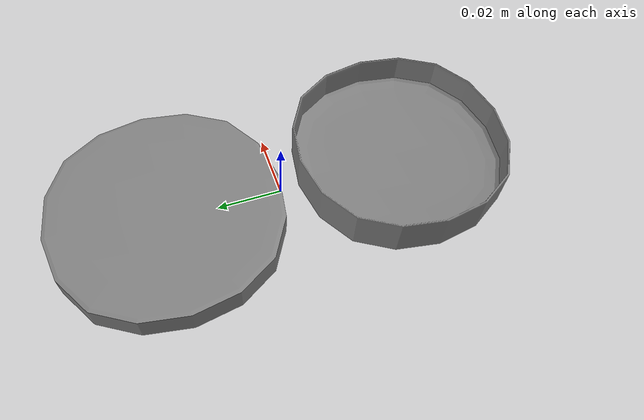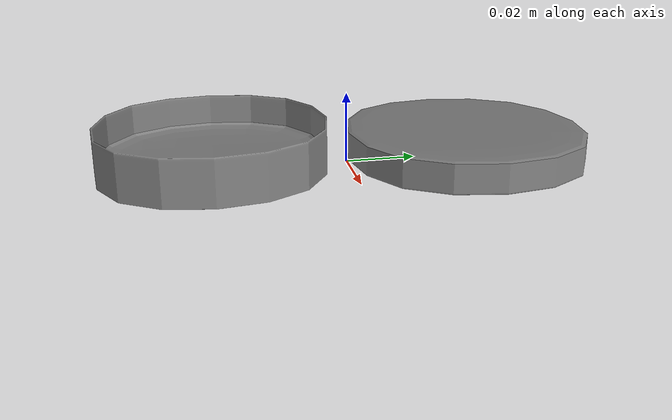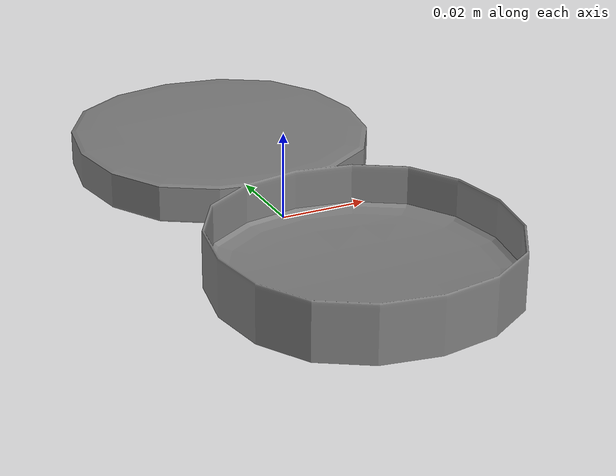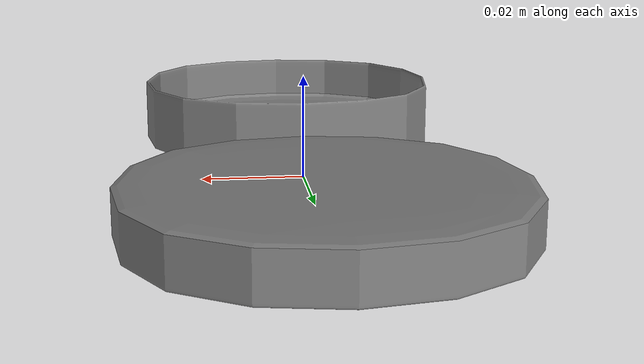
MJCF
<?xml version="1.0" ?>
<mujoco model="petri_dish">
  <asset>
    <material name="lambert1" specular="0.4000000000000001" shininess="0.001" rgba="0.50196078 0.50196078 0.50196078 1.0"/>
    <mesh file="petri_dish.obj"/>
    <mesh file="petri_dish/petri_dish_collision_0.obj"/>
    <mesh file="petri_dish/petri_dish_collision_1.obj"/>
    <mesh file="petri_dish/petri_dish_collision_2.obj"/>
    <mesh file="petri_dish/petri_dish_collision_3.obj"/>
    <mesh file="petri_dish/petri_dish_collision_4.obj"/>
    <mesh file="petri_dish/petri_dish_collision_5.obj"/>
    <mesh file="petri_dish/petri_dish_collision_6.obj"/>
    <mesh file="petri_dish/petri_dish_collision_7.obj"/>
    <mesh file="petri_dish/petri_dish_collision_8.obj"/>
    <mesh file="petri_dish/petri_dish_collision_9.obj"/>
    <mesh file="petri_dish/petri_dish_collision_10.obj"/>
    <mesh file="petri_dish/petri_dish_collision_11.obj"/>
    <mesh file="petri_dish/petri_dish_collision_12.obj"/>
    <mesh file="petri_dish/petri_dish_collision_13.obj"/>
    <mesh file="petri_dish/petri_dish_collision_14.obj"/>
    <mesh file="petri_dish/petri_dish_collision_15.obj"/>
    <mesh file="petri_dish/petri_dish_collision_16.obj"/>
    <mesh file="petri_dish/petri_dish_collision_17.obj"/>
    <mesh file="petri_dish/petri_dish_collision_18.obj"/>
    <mesh file="petri_dish/petri_dish_collision_19.obj"/>
    <mesh file="petri_dish/petri_dish_collision_20.obj"/>
    <mesh file="petri_dish/petri_dish_collision_21.obj"/>
    <mesh file="petri_dish/petri_dish_collision_22.obj"/>
    <mesh file="petri_dish/petri_dish_collision_23.obj"/>
    <mesh file="petri_dish/petri_dish_collision_24.obj"/>
    <mesh file="petri_dish/petri_dish_collision_25.obj"/>
  </asset>
  <worldbody>
    <body name="petri_dish">
      <inertial pos="0 0 0.006800" mass="0.02" diaginertia="0.0008 0.0008 0.0005"/>
      <geom material="lambert1" mesh="petri_dish" class="visual"/>
      <geom mesh="petri_dish_collision_0" rgba="0.1860684267201348 0.5502312622119268 0.1576423774288379 1" class="collision"/>
      <geom mesh="petri_dish_collision_1" rgba="0.4811376083786282 0.5034479153312724 0.37477778305383314 1" class="collision"/>
      <geom mesh="petri_dish_collision_2" rgba="0.4002864524993981 0.18323683734862106 0.9640563853043363 1" class="collision"/>
      <geom mesh="petri_dish_collision_3" rgba="0.755357616117166 0.8770275760042017 0.4874170566129431 1" class="collision"/>
      <geom mesh="petri_dish_collision_4" rgba="0.3629139999250084 0.39837993192755483 0.0016693973795991468 1" class="collision"/>
      <geom mesh="petri_dish_collision_5" rgba="0.4975956009792878 0.6565499028829419 0.9146782304489851 1" class="collision"/>
      <geom mesh="petri_dish_collision_6" rgba="0.6611850383895087 0.07171621826818397 0.2544028568472235 1" class="collision"/>
      <geom mesh="petri_dish_collision_7" rgba="0.06463781251386913 0.5864497310999579 0.5691516318326096 1" class="collision"/>
      <geom mesh="petri_dish_collision_8" rgba="0.7064784322550767 0.9699001009944357 0.6920814272564785 1" class="collision"/>
      <geom mesh="petri_dish_collision_9" rgba="0.06678016341460757 0.4242881302432251 0.45516979772914523 1" class="collision"/>
      <geom mesh="petri_dish_collision_10" rgba="0.09475393975101987 0.4499678759932976 0.8324465670804199 1" class="collision"/>
      <geom mesh="petri_dish_collision_11" rgba="0.4182485606409122 0.2532329811344779 0.9683731501623598 1" class="collision"/>
      <geom mesh="petri_dish_collision_12" rgba="0.8033550530229033 0.5952483678280386 0.2261403126075079 1" class="collision"/>
      <geom mesh="petri_dish_collision_13" rgba="0.37107206445996255 0.3325105769712383 0.7775446987278168 1" class="collision"/>
      <geom mesh="petri_dish_collision_14" rgba="0.4094756735348365 0.06710783281908472 0.9855142537197509 1" class="collision"/>
      <geom mesh="petri_dish_collision_15" rgba="0.23563913952984006 0.1751726904157559 0.31242634005052994 1" class="collision"/>
      <geom mesh="petri_dish_collision_16" rgba="0.5281261931669037 0.40108635630285794 0.5648470255605688 1" class="collision"/>
      <geom mesh="petri_dish_collision_17" rgba="0.5812363770748841 0.3413919310727094 0.6191401362600694 1" class="collision"/>
      <geom mesh="petri_dish_collision_18" rgba="0.4780740466671247 0.42334607530617085 0.244672904939364 1" class="collision"/>
      <geom mesh="petri_dish_collision_19" rgba="0.8472599881691718 0.4168379382824908 0.8182833120138518 1" class="collision"/>
      <geom mesh="petri_dish_collision_20" rgba="0.025991141737136014 0.15902845999797954 0.9019026295488535 1" class="collision"/>
      <geom mesh="petri_dish_collision_21" rgba="0.6486509680919984 0.7588195968417824 0.6422077111038019 1" class="collision"/>
      <geom mesh="petri_dish_collision_22" rgba="0.6276143537320528 0.27085742408899094 0.7081561405325139 1" class="collision"/>
      <geom mesh="petri_dish_collision_23" rgba="0.7601517448632094 0.6900941498121876 0.49306984098198225 1" class="collision"/>
      <geom mesh="petri_dish_collision_24" rgba="0.1193490736064805 0.9172584049681956 0.711220655549277 1" class="collision"/>
      <geom mesh="petri_dish_collision_25" rgba="0.22759629777371493 0.26612365112718717 0.18441261535152143 1" class="collision"/>
      <site class="grasppoint" pos="0.0000 0.0000 0.0082"/>
      <site class="grasppoint" pos="0.0000 0.0000 0.0109"/>
      <site class="grasppoint" pos="0.0000 0.0000 0.0129"/>
    </body>
  </worldbody>
  <compiler boundmass="0.015" boundinertia="1e-05" angle="radian"/>
  <default>
    <default class="visual">
      <geom group="2" type="mesh" contype="0" conaffinity="0" density="50"/>
    </default>
    <default class="collision">
      <geom group="3" type="mesh" density="50" friction="1.5 0.1 0.1" solimp="0.9 0.95 0.001" solref="0.02 1"/>
    </default>
    <default class="grasppoint">
      <site type="sphere" size="0.005" group="4" rgba="0 0 1 1"/>
    </default>
  </default>
</mujoco>
